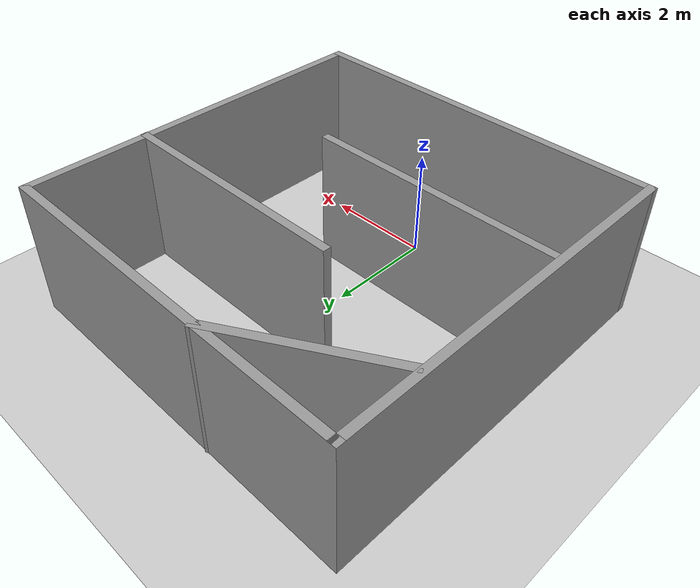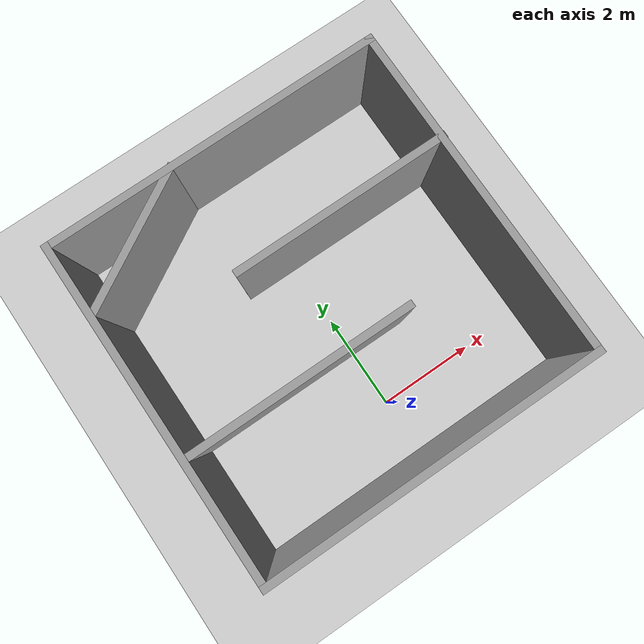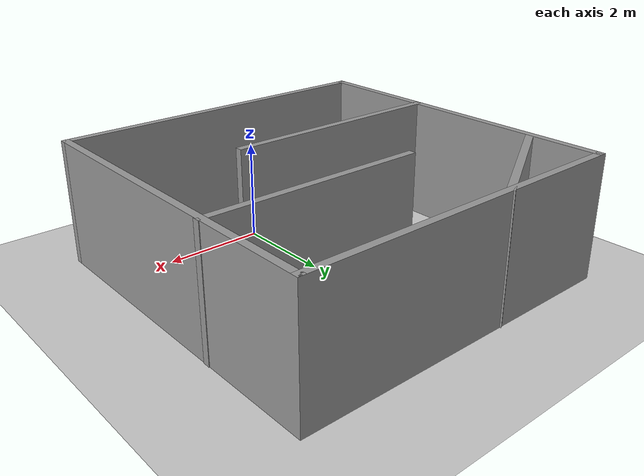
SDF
<sdf version="1.7">
 <world name="default">
  <light name="sun" type="directional">
   <pose>0 0 10 0 -0 0</pose>
   <diffuse>0.8 0.8 0.8 1</diffuse>
   <specular>0.2 0.2 0.2 1</specular>
   <attenuation>
    <range>1000</range>
    <constant>0.9</constant>
    <linear>0.01</linear>
    <quadratic>0.001</quadratic>
   </attenuation>
   <direction>-0.5 0.1 -0.9</direction>
   <spot><inner_angle>0</inner_angle><outer_angle>0</outer_angle><falloff>0</falloff></spot>
  </light>
  <model name="ground_plane">
   <static>1</static>
   <link name="link">
    <collision name="collision">
     <geometry><plane><normal>0 0 1</normal><size>100 100</size></plane></geometry>
     <surface><friction><ode><mu>100</mu><mu2>50</mu2></ode></friction></surface>
    </collision>
    <visual name="visual">
     <cast_shadows>0</cast_shadows>
     <geometry><plane><normal>0 0 1</normal><size>100 100</size></plane></geometry>
     <material>
      <script><uri>file://media/materials/scripts/gazebo.material</uri><name>Gazebo/Grey</name></script>
     </material>
    </visual>
   </link>
  </model>
  <gravity>0 0 -9.8</gravity>
  <magnetic_field>6e-06 2.3e-05 -4.2e-05</magnetic_field>
  <atmosphere type="adiabatic"/>
  <physics type="ode">
   <max_step_size>0.001</max_step_size>
   <real_time_factor>1</real_time_factor>
   <real_time_update_rate>1000</real_time_update_rate>
  </physics>
  <scene><ambient>0.4 0.4 0.4 1</ambient><background>0.7 0.7 0.7 1</background><shadows>1</shadows></scene>
  <audio><device>default</device></audio>
  <spherical_coordinates>
   <surface_model>EARTH_WGS84</surface_model>
   <latitude_deg>0</latitude_deg>
   <longitude_deg>0</longitude_deg>
   <elevation>0</elevation>
   <heading_deg>0</heading_deg>
  </spherical_coordinates>
  <model name="Untitled">
   <pose>-0.120439 2.22953 0 0 -0 0</pose>
   <link name="Wall_0">
    <collision name="Wall_0_Collision">
     <geometry><box><size>7 0.15 2.5</size></box></geometry>
     <pose>0 0 1.25 0 -0 0</pose>
    </collision>
    <visual name="Wall_0_Visual">
     <pose>0 0 1.25 0 -0 0</pose>
     <geometry><box><size>7 0.15 2.5</size></box></geometry>
     <material>
      <script><uri>file://media/materials/scripts/gazebo.material</uri><name>Gazebo/Grey</name></script>
      <ambient>1 1 1 1</ambient>
     </material>
     <meta><layer>0</layer></meta>
    </visual>
    <pose>-0.006411 -3.43773 0 0 -0 0</pose>
   </link>
   <link name="Wall_11">
    <collision name="Wall_11_Collision">
     <geometry><box><size>4.5 0.15 2.5</size></box></geometry>
     <pose>0 0 1.25 0 -0 0</pose>
    </collision>
    <visual name="Wall_11_Visual">
     <pose>0 0 1.25 0 -0 0</pose>
     <geometry><box><size>4.5 0.15 2.5</size></box></geometry>
     <material>
      <script><uri>file://media/materials/scripts/gazebo.material</uri><name>Gazebo/Grey</name></script>
      <ambient>1 1 1 1</ambient>
     </material>
     <meta><layer>0</layer></meta>
    </visual>
    <pose>1.25641 1.17586 0 0 -0 3.14159</pose>
   </link>
   <link name="Wall_14">
    <collision name="Wall_14_Collision">
     <geometry><box><size>3 0.15 2.5</size></box></geometry>
     <pose>0 0 1.25 0 -0 0</pose>
    </collision>
    <visual name="Wall_14_Visual">
     <pose>0 0 1.25 0 -0 0</pose>
     <geometry><box><size>3 0.15 2.5</size></box></geometry>
     <material>
      <script><uri>file://media/materials/scripts/gazebo.material</uri><name>Gazebo/Grey</name></script>
      <ambient>1 1 1 1</ambient>
     </material>
     <meta><layer>0</layer></meta>
    </visual>
    <pose>-2.11191 2.69778 0 0 -0 -2.61799</pose>
   </link>
   <link name="Wall_2">
    <collision name="Wall_2_Collision">
     <geometry><box><size>7 0.15 2.5</size></box></geometry>
     <pose>0 0 1.25 0 -0 0</pose>
    </collision>
    <visual name="Wall_2_Visual">
     <pose>0 0 1.25 0 -0 0</pose>
     <geometry><box><size>7 0.15 2.5</size></box></geometry>
     <material>
      <script><uri>file://media/materials/scripts/gazebo.material</uri><name>Gazebo/Grey</name></script>
      <ambient>1 1 1 1</ambient>
     </material>
     <meta><layer>0</layer></meta>
    </visual>
    <pose>-3.43141 -0.012733 0 0 -0 1.5708</pose>
   </link>
   <link name="Wall_4">
    <collision name="Wall_4_Collision">
     <geometry><box><size>7 0.15 2.5</size></box></geometry>
     <pose>0 0 1.25 0 -0 0</pose>
    </collision>
    <visual name="Wall_4_Visual">
     <pose>0 0 1.25 0 -0 0</pose>
     <geometry><box><size>7 0.15 2.5</size></box></geometry>
     <material>
      <script><uri>file://media/materials/scripts/gazebo.material</uri><name>Gazebo/Grey</name></script>
      <ambient>1 1 1 1</ambient>
     </material>
     <meta><layer>0</layer></meta>
    </visual>
    <pose>-0.006411 3.41227 0 0 -0 0</pose>
   </link>
   <link name="Wall_5">
    <collision name="Wall_5_Collision">
     <geometry><box><size>7 0.15 2.5</size></box></geometry>
     <pose>0 0 1.25 0 -0 0</pose>
    </collision>
    <visual name="Wall_5_Visual">
     <pose>0 0 1.25 0 -0 0</pose>
     <geometry><box><size>7 0.15 2.5</size></box></geometry>
     <material>
      <script><uri>file://media/materials/scripts/gazebo.material</uri><name>Gazebo/Grey</name></script>
      <ambient>1 1 1 1</ambient>
     </material>
     <meta><layer>0</layer></meta>
    </visual>
    <pose>3.41859 -0.012733 0 0 -0 -1.5708</pose>
   </link>
   <link name="Wall_7">
    <collision name="Wall_7_Collision">
     <geometry><box><size>4.75 0.15 2.5</size></box></geometry>
     <pose>0 0 1.25 0 -0 0</pose>
    </collision>
    <visual name="Wall_7_Visual">
     <pose>0 0 1.25 0 -0 0</pose>
     <geometry><box><size>4.75 0.15 2.5</size></box></geometry>
     <material>
      <script><uri>file://media/materials/scripts/gazebo.material</uri><name>Gazebo/Grey</name></script>
      <ambient>1 1 1 1</ambient>
     </material>
     <meta><layer>0</layer></meta>
    </visual>
    <pose>-1.10484 -0.978751 0 0 -0 0</pose>
   </link>
   <static>1</static>
  </model>
 </world>
</sdf>
